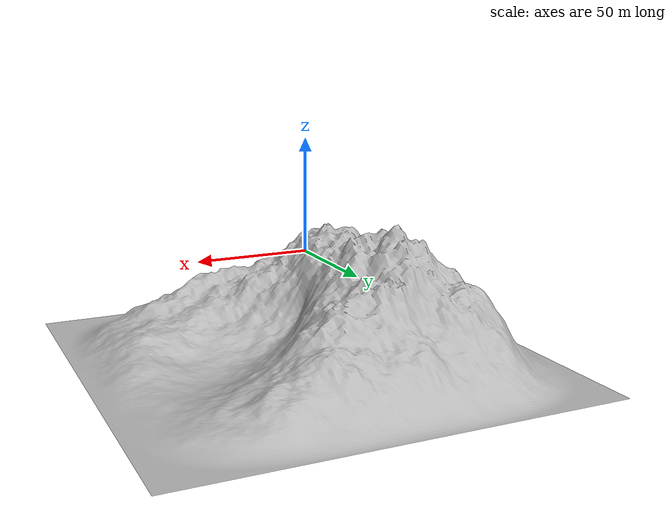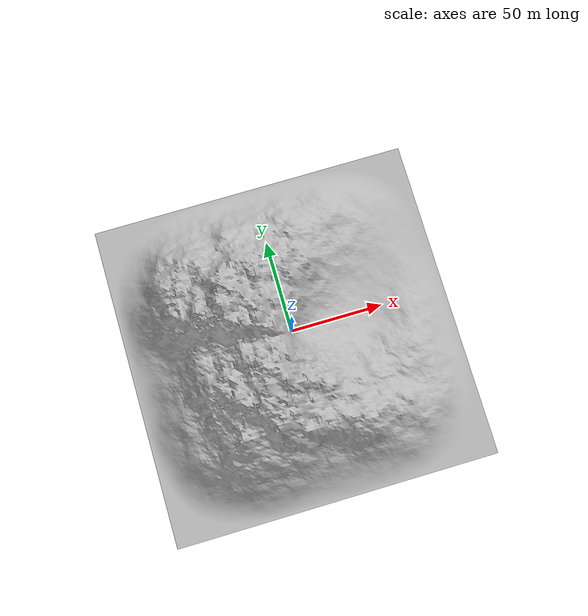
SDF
<?xml version="1.0" ?>

<sdf version="1.9">
  <world name="empty_underwater">

    <gravity>0 0 9.81</gravity>

    <physics name="1ms" type="ignored">
      <max_step_size>0.001</max_step_size>
      <real_time_factor>1.0</real_time_factor>
    </physics>

    <scene>
      <ambient>0.1 0.1 0.1 0.1</ambient>
      <background>0.01 0.05 0.18 1.0</background>
      <grid>false</grid>
    </scene>

    <!-- IMU Sensor Plugin-->
    <plugin
      filename="gz-sim-imu-system"
      name="gz::sim::systems::Imu">
    </plugin>

    <plugin
      filename="gz-sim-physics-system"
      name="gz::sim::systems::Physics">
    </plugin>

    <plugin
      filename="gz-sim-sensors-system"
      name="gz::sim::systems::Sensors">
      <render_engine>ogre2</render_engine>
    </plugin>

    <plugin
      filename="gz-sim-user-commands-system"
      name="gz::sim::systems::UserCommands">
    </plugin>

    <plugin
      filename="gz-sim-scene-broadcaster-system"
      name="gz::sim::systems::SceneBroadcaster">
    </plugin>

    <!-- Buoyancy Plugin-->
    <plugin
      filename="gz-sim-buoyancy-system"
      name="gz::sim::systems::Buoyancy">
      <uniform_fluid_density>1000</uniform_fluid_density>
    </plugin>

    <!-- Light -->

    <!-- Invisible top plane to keep boat from flying out of water -->
    <!-- Graded buoyancy plugin doesn't work well enough -->
    <model name="top_collision_plane">
      <static>true</static>
      <pose>0 0 1 3.14 0 0</pose>
      <link name="link">
        <collision name="collision">
          <geometry>
            <plane>
              <normal>0 0 1</normal>
              <size>1000 1000</size>
            </plane>
          </geometry>
        </collision>
      </link>
    </model>

    <!-- Simple ocean floor model -->
    <include>
      <uri> ocean_floor_simple </uri>
    </include>

  </world>
</sdf>

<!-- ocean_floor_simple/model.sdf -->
<sdf version="1.6">
    <model name="ocean_floor_simple">
        <static>true</static>
        <pose>0 0 -50 1.57 0 0</pose>
        <link name="base_link">
            <collision name="base_link_collision">
                <geometry>
                    <mesh>
                        <uri>models://ocean_floor_simple/resources/ocean_floor_simple.obj</uri>
                        <scale>10 10 10</scale>
                    </mesh>
                </geometry>
            </collision>
            <visual name="base_link_visual">
                <geometry>
                    <mesh>
                        <uri>models://ocean_floor_simple/resources/ocean_floor_simple.obj</uri>
                        <scale>10 10 10</scale>
                    </mesh>
                </geometry>
            </visual>
        </link>
    </model>
</sdf>
